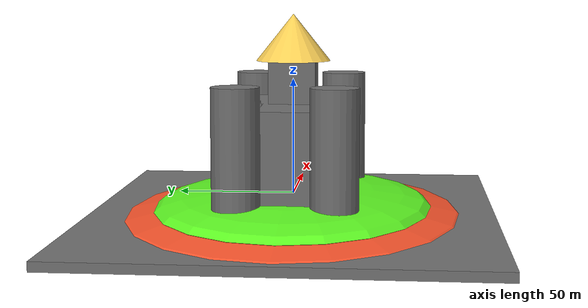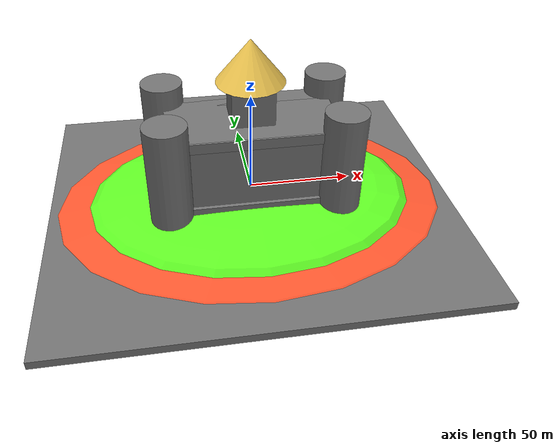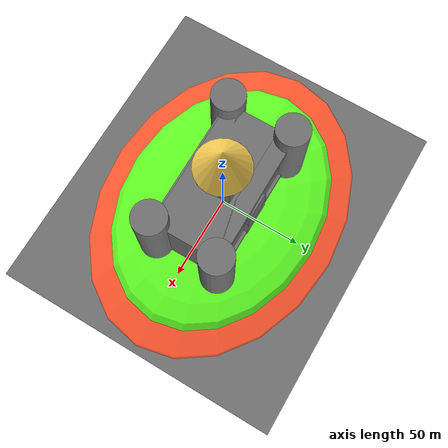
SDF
<?xml version="1.0" ?>
<sdf version="1.6">
  <model name="castle">
      <static>true</static>
        <link name="link_moat">
          <pose>0 0 -10 0 0 -1.571</pose>
          <collision name="col">
            <geometry>
              <ellipsoid>
                <radii>75 100 8</radii>
              </ellipsoid>
            </geometry>
          </collision>

          <visual name="vis">
            <geometry>
              <ellipsoid>
                <radii>75 100 8</radii>
              </ellipsoid>
            </geometry>

            <material>
              <ambient>1 0.24 0.08 1</ambient>
              <diffuse>1 0.34 0.18 1</diffuse>

              <pbr>
                <metal>
                  <albedo_map>textures/misc_textures/lava_5.jpeg</albedo_map>
                  <roughness>0.8</roughness>
                  <metalness>0.2</metalness>
                </metal>
              </pbr>
            </material>
          </visual>
        </link>

        <link name="link_ground">
        <pose>0 0 -5 0 0 -1.571</pose>
          <collision name="col">
            <geometry>
              <ellipsoid>
                <radii>60 80 8</radii>
              </ellipsoid>
            </geometry>
          </collision>

          <visual name="vis">
            <geometry>
              <ellipsoid>
                <radii>60 80 8</radii>
              </ellipsoid>
            </geometry>

            <material>
            <ambient>0.28 0.94 0.04 1</ambient>
            <diffuse>0.38 1 0.14 1</diffuse>

              <pbr>
                <metal>
                  <albedo_map>textures/grass_textures/green_grass_seamless.jpg</albedo_map>
                  <roughness>1</roughness>
                  <metalness>0.0</metalness>
                </metal>
              </pbr>
            </material>
          </visual>
        </link>

        <link name="link_bottom_ground">
          <pose>0 0 -10 0 0 0</pose>
          <collision name="col">
            <geometry><box><size>200 175 4</size></box></geometry>
          </collision>

          <visual name="vis">
            <geometry><box><size>200 175 4</size></box></geometry>

            <material>
              <ambient>0.35 0.35 0.35 1</ambient>
              <diffuse>0.45 0.45 0.45 1</diffuse>
              <pbr>
                <metal>
                  <albedo_map>textures/soil_textures/dirt.jpeg</albedo_map>
                  <roughness>1</roughness>
                  <metalness>0.0</metalness>
                </metal>
              </pbr>
            </material>
          </visual>
        </link>

        <link name="link_base">
        <pose>0 0 20 0 0 0</pose>
        <collision name="col"><geometry><box><size>40 80 40</size></box></geometry></collision>
        <visual name="vis">
          <geometry><box><size>80 40 40</size></box></geometry>
          <material>
            <ambient>0.35 0.35 0.35 1</ambient>
            <diffuse>0.45 0.45 0.45 1</diffuse>
            <!-- This tag and its contents add texture (an image) to our models -->
            <pbr>
              <metal>
                <!-- Point to your image -->
                <albedo_map>textures/stone_textures/stone_wall_seamless_2x1.jpg</albedo_map>
                <!-- Optional: roughness/metalness for a matte, non-metal look -->
                <roughness>0.9</roughness>
                <metalness>0.0</metalness>
              </metal>
            </pbr>
          </material>
        </visual>
      </link>

      <link name="link_tower1">
      <pose>-40 -20 25 0 0 0</pose>
        <collision name="col"><geometry><cylinder><radius>10</radius><length>50</length></cylinder></geometry></collision>
        <visual name="vis">
          <geometry><cylinder><radius>10</radius><length>50</length></cylinder></geometry>
          <material>
            <ambient>0.35 0.35 0.35 1</ambient>
            <diffuse>0.45 0.45 0.45 1</diffuse>
            <pbr>
              <metal>
                <albedo_map>textures/stone_textures/stone_wall_seamless_1x1.jpg</albedo_map>
                <roughness>0.9</roughness>
                <metalness>0.0</metalness>
              </metal>
            </pbr>
          </material>
        </visual>
      </link>

      <link name="link_tower2">
      <pose>-40 20 25 0 0 0</pose>
        <collision name="col"><geometry><cylinder><radius>10</radius><length>50</length></cylinder></geometry></collision>
        <visual name="vis">
          <geometry><cylinder><radius>10</radius><length>50</length></cylinder></geometry>
          <material>
            <ambient>0.35 0.35 0.35 1</ambient>
            <diffuse>0.45 0.45 0.45 1</diffuse>
            <pbr>
              <metal>
                <albedo_map>textures/stone_textures/stone_wall_seamless_1x1.jpg</albedo_map>
                <roughness>0.9</roughness>
                <metalness>0.0</metalness>
              </metal>
            </pbr>
          </material>
        </visual>
      </link>

      <link name="link_tower3">
      <pose>40 -20 25 0 0 0</pose>
        <collision name="col"><geometry><cylinder><radius>10</radius><length>50</length></cylinder></geometry></collision>
        <visual name="vis">
          <geometry><cylinder><radius>10</radius><length>50</length></cylinder></geometry>
          <material>
            <ambient>0.35 0.35 0.35 1</ambient>
            <diffuse>0.45 0.45 0.45 1</diffuse>
            <pbr>
              <metal>
                <albedo_map>textures/stone_textures/stone_wall_seamless_1x1.jpg</albedo_map>
                <roughness>0.9</roughness>
                <metalness>0.0</metalness>
              </metal>
            </pbr>
          </material>
        </visual>
      </link>

      <link name="link_tower4">
      <pose>40 20 25 0 0 0</pose>
        <collision name="col"><geometry><cylinder><radius>10</radius><length>50</length></cylinder></geometry></collision>
        <visual name="vis">
          <geometry><cylinder><radius>10</radius><length>50</length></cylinder></geometry>
          <material>
            <ambient>0.35 0.35 0.35 1</ambient>
            <diffuse>0.45 0.45 0.45 1</diffuse>
            <pbr>
              <metal>
                <albedo_map>textures/stone_textures/stone_wall_seamless_1x1.jpg</albedo_map>
                <roughness>0.9</roughness>
                <metalness>0.0</metalness>
              </metal>
            </pbr>
          </material>
        </visual>
      </link>

      <link name="link_trim1">
        <pose>0 17 2.5 0 0 0</pose>
        <collision name="col">
            <geometry>
                <box><size>80 10 5</size></box>
            </geometry>
        </collision>
        <visual name="vis">
            <geometry>
                <box><size>80 10 5</size></box>
            </geometry>
          <material>
            <ambient>0.35 0.35 0.35 1</ambient>
            <diffuse>0.45 0.45 0.45 1</diffuse>
            <pbr>
              <metal>
                <albedo_map>textures/stone_textures/stone_wall_seamless_2x1.jpg</albedo_map>
                <roughness>0.9</roughness>
                <metalness>0.0</metalness>
              </metal>
            </pbr>
          </material>
        </visual>
    </link>

    <link name="link_trim2">
        <pose> 0 -17 2.5 0 0 0</pose>
        <collision name="col">
            <geometry>
                <box><size>80 10 5</size></box>
            </geometry>
        </collision>
        <visual name="vis">
            <geometry>
                <box><size>80 10 5</size></box>
            </geometry>
            <material>
                <ambient>0.35 0.35 0.35 1</ambient>
                <diffuse>0.45 0.45 0.45 1</diffuse>
                <pbr>
                    <metal>
                        <albedo_map>textures/stone_textures/stone_wall_seamless_2x1.jpg</albedo_map>
                        <roughness>0.9</roughness>
                        <metalness>0.0</metalness>
                    </metal>
                </pbr>
            </material>
        </visual>
    </link>

    <link name="link_trim3">
        <pose>0 17 37.5 0 0 0</pose>
        <collision name="col">
            <geometry>
                <box><size>80 10 5</size></box>
            </geometry>
        </collision>
        <visual name="vis">
            <geometry>
                <box><size>80 10 5</size></box>
            </geometry>
          <material>
            <ambient>0.35 0.35 0.35 1</ambient>
            <diffuse>0.45 0.45 0.45 1</diffuse>
            <pbr>
              <metal>
                <albedo_map>textures/stone_textures/stone_wall_seamless_2x1.jpg</albedo_map>
                <roughness>0.9</roughness>
                <metalness>0.0</metalness>
              </metal>
            </pbr>
          </material>
        </visual>
    </link>

    <link name="link_trim4">
        <pose> 0 -16 37.5 0 0 0</pose>
        <collision name="col">
            <geometry>
                <box><size>80 10 5</size></box>
            </geometry>
        </collision>
        <visual name="vis">
            <geometry>
                <box><size>80 10 5</size></box>
            </geometry>
            <material>
                <ambient>0.35 0.35 0.35 1</ambient>
                <diffuse>0.45 0.45 0.45 1</diffuse>
                <pbr>
                    <metal>
                        <albedo_map>textures/stone_textures/stone_wall_seamless_2x1.jpg</albedo_map>
                        <roughness>0.9</roughness>
                        <metalness>0.0</metalness>
                    </metal>
                </pbr>
            </material>
        </visual>
    </link>

    <link name="link_middle_tower">
        <pose>0 0 30 0 0 0</pose>
        <collision name="col"><geometry><box><size>20 20 60</size></box></geometry></collision>
        <visual name="vis">
          <geometry><box><size>20 20 60</size></box></geometry>
          <material>
            <ambient>0.35 0.35 0.35 1</ambient>
            <diffuse>0.45 0.45 0.45 1</diffuse>
            <!-- This tag and its contents add texture (an image) to our models -->
            <pbr>
              <metal>
                <!-- Point to your image -->
                <albedo_map>textures/stone_textures/stone_wall_seamless_2x1.jpg</albedo_map>
                <!-- Optional: roughness/metalness for a matte, non-metal look -->
                <roughness>0.9</roughness>
                <metalness>0.0</metalness>
              </metal>
            </pbr>
          </material>
        </visual>
    </link>

    <link name="link_draw_bottom">
        <pose>0 20 10 0 0 0</pose>
        <collision name="col"><geometry><box><size>20 5 20</size></box></geometry></collision>
        <visual name="vis">
          <geometry><box><size>20 5 20</size></box></geometry>
          <material>
            <ambient>0.35 0.35 0.35 1</ambient>
            <diffuse>0.45 0.45 0.45 1</diffuse>
            <!-- This tag and its contents add texture (an image) to our models -->
            <pbr>
              <metal>
                <!-- Point to your image -->
                <albedo_map>textures/wood_textures/wood_texture_seamless_1x2.jpg</albedo_map>
                <!-- Optional: roughness/metalness for a matte, non-metal look -->
                <roughness>0.9</roughness>
                <metalness>0.0</metalness>
              </metal>
            </pbr>
          </material>
        </visual>
    </link>

    <link name="link_draw_top">
        <pose>0 20 20 1.571 0 0</pose>
        <collision name="col"><geometry><cylinder><radius>10</radius><length>5</length></cylinder></geometry></collision>
        <visual name="vis">
          <geometry><cylinder><radius>10</radius><length>5</length></cylinder></geometry>
          <material>
            <ambient>0.35 0.35 0.35 1</ambient>
            <diffuse>0.45 0.45 0.45 1</diffuse>
            <pbr>
              <metal>
                <albedo_map>model://textures/wood_textures/wood_texture_seamless_1x1.jpg</albedo_map>
                <roughness>0.9</roughness>
                <metalness>0.0</metalness>
              </metal>
            </pbr>
          </material>
        </visual>
    </link>

    <link name="link_tower_roof">
    <pose>0 0 68 0 0 0</pose>

        <collision name="col">
            <geometry>
                <cone>
                    <radius>16</radius>
                    <length>20</length>
                </cone>
            </geometry>
        </collision>

        <visual name="vis">
            <geometry>
                <cone>
                    <radius>16</radius>
                    <length>20</length>
                </cone>
            </geometry>
          <material>
            <ambient>1 0.73 0.24 1</ambient>
            <diffuse>1 0.83 0.34 1</diffuse>
            <pbr>
              <metal>
                <albedo_map>model://textures/wood_textures/wood_texture_seamless_1x10.jpg</albedo_map>
                <roughness>0.9</roughness>
                <metalness>0.0</metalness>
              </metal>
            </pbr>
          </material>
        </visual>
    </link>
  </model>
</sdf>
